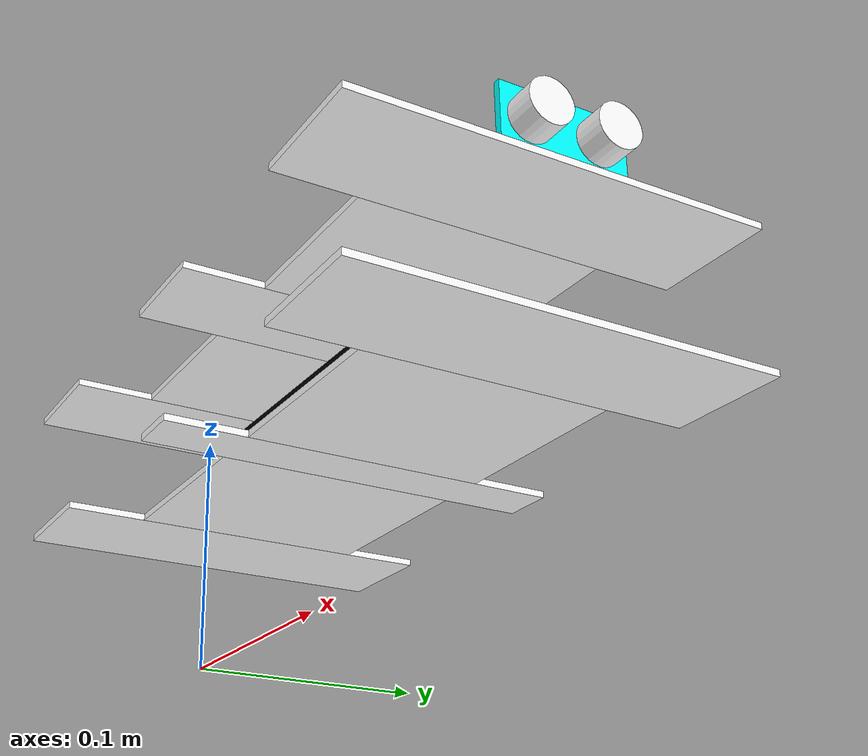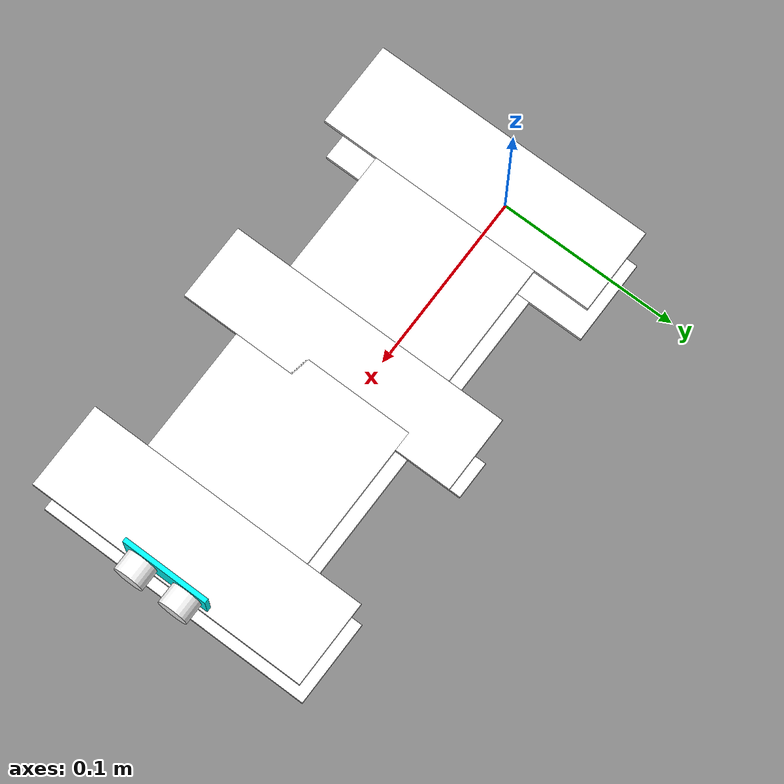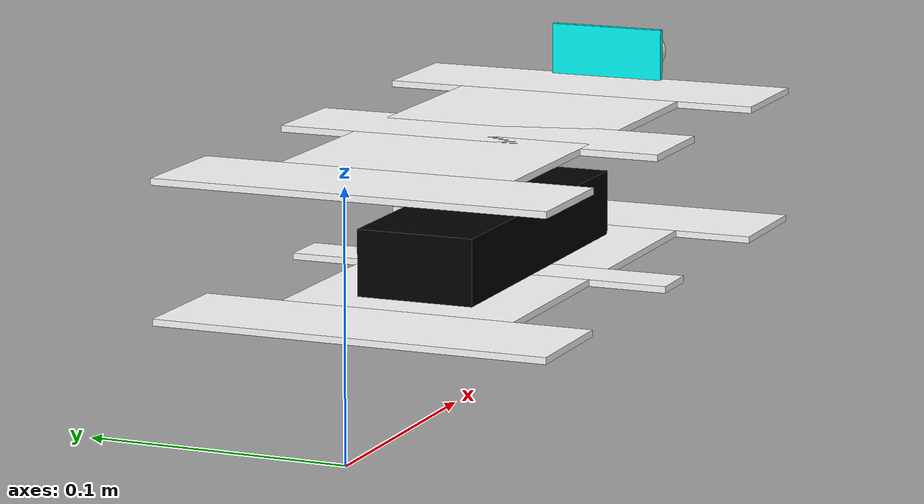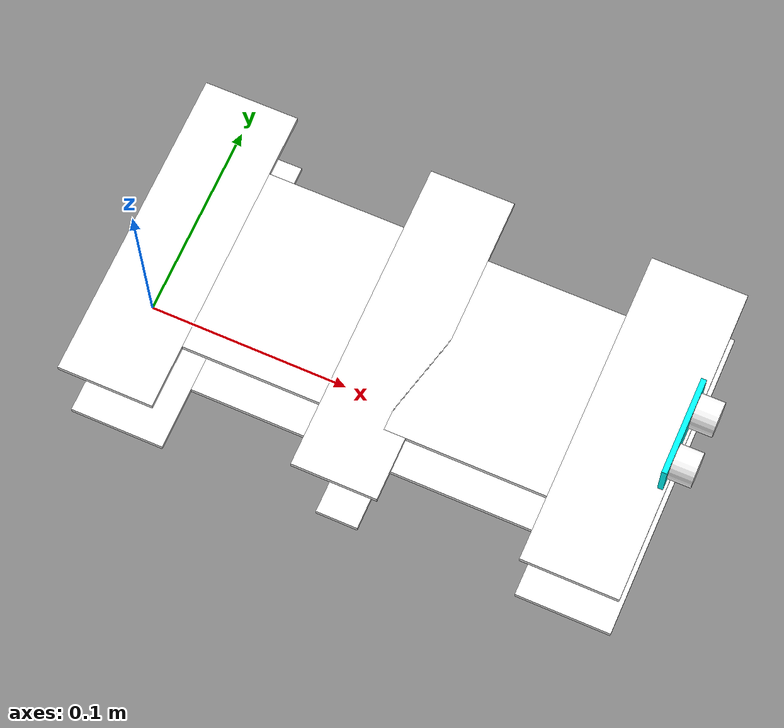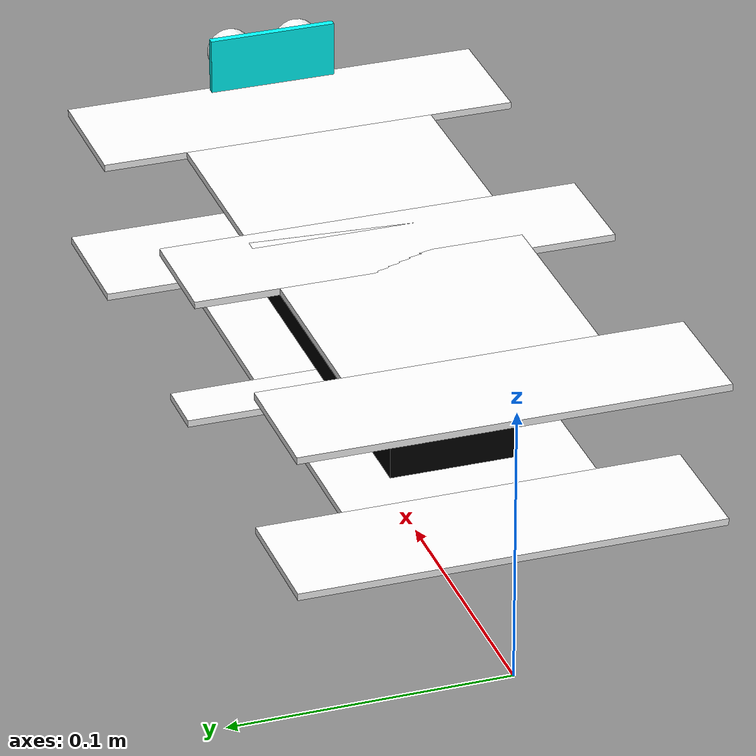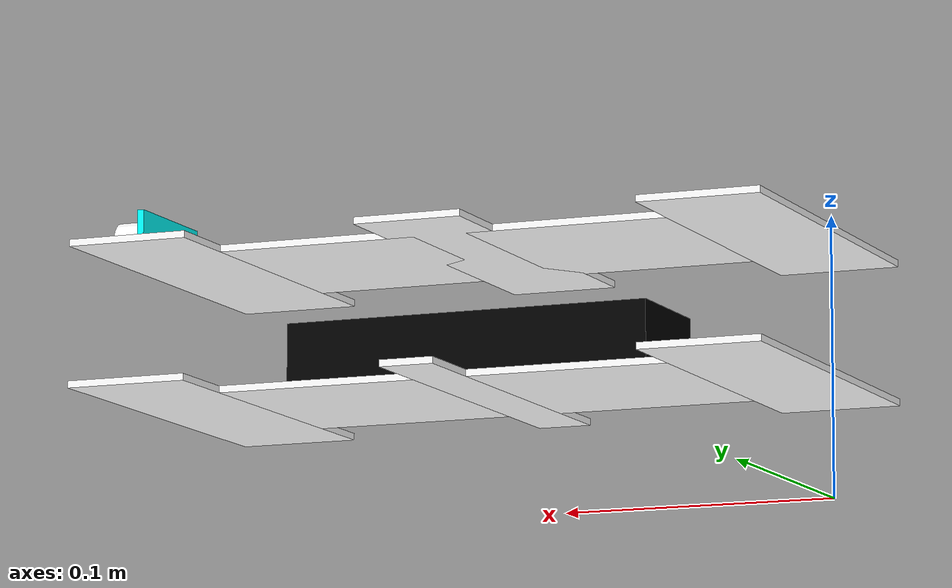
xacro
<?xml version="1.0"?>
<robot xmlns:xacro="http://www.ros.org/wiki/xacro"  >
    <xacro:include filename="inertial_macros.xacro"/>
    <material name="white">
        <color rgba="1.0 1.0 1.0 1.0"/>
    </material>

    <material name="black">
        <color rgba="0.0 0.0 0.0 1.0"/>
    </material>

    <material name="red">
        <color rgba="1.0 0.0 0.0 1.0"/>
    </material>
    <material name="yellow">
        <color rgba="1.0 1.0 0.0 1.0"/>
    </material>

    <material name="blue">
        <color rgba="0.0 1.0 1.0 1.0"/>
    </material>

    <material name="green">
        <color rgba="0.0 1.0 0.0 1.0"/>
    </material>
<link name="base_link">

</link>

<!-- Chassis part 1 -->
<joint name="chassis1_joint" type="fixed">
    <parent link="base_link"/>
    <child link="chassis1"/>
    <origin xyz="0.0 0.0 0.0"/>
</joint>
<link name="chassis1">
    <visual>
        <origin xyz="0.0225 0.0 0.045"/>
        <geometry>
            <box size="0.045 0.15 0.0025"/>
        </geometry>
        <material name="white"/>
    </visual>
    <collision>
        <origin xyz="0.0225 0 0.045"/>
        <geometry>
            <box size="0.045 0.15 0.0025"/>
        </geometry>
    </collision>
    <xacro:inertial_box mass="0.0084375" x="0.045" y="0.15" z="0.0025">
        <origin xyz="0.0225 0.0 0.045" rpy="0.0 0.0 0.0"/>
    </xacro:inertial_box>
</link>
<gazebo reference="chassis1">
    <material>Gazebo/White</material>
</gazebo>

<!-- Chassis part 2 -->
<joint name="chassis2_joint" type="fixed">
    <parent link="chassis1"/>
    <child link="chassis2"/>
    <origin xyz="0.0825 0.0 0.045"/>
</joint>
<link name="chassis2">
    <visual>
        <geometry>
            <box size="0.075 0.09 0.0025"/>
        </geometry>
        <material name="white"/>
    </visual>
    <collision>
        <geometry>
            <box size="0.075 0.09 0.0025"/>
        </geometry>
    </collision>
    <xacro:inertial_box mass="0.0084375" x="0.075" y="0.09" z="0.0025">
        <origin xyz="0.0825 0.0 0.045" rpy="0.0 0.0 0.0"/>
    </xacro:inertial_box>
</link>
<gazebo reference="chassis2">
    <material>Gazebo/White</material>
</gazebo>

<!-- Chassis part 3 -->
<joint name="chassis3_joint" type="fixed">
    <parent link="chassis2"/>
    <child link="chassis3"/>
    <origin xyz="0.0475 0.0 0.0"/>
</joint>
<link name="chassis3">
    <visual>
        <geometry>
            <box size="0.02 0.15 0.0025"/>
        </geometry>
        <material name="white"/>
    </visual>
    <collision>
        <geometry>
            <box size="0.02 0.15 0.0025"/>
        </geometry>
    </collision>
    <xacro:inertial_box mass="0.00375" x="0.02" y="0.15" z="0.0025">
        <origin xyz="0.0475 0.0 0.0" rpy="0.0 0.0 0.0"/>
    </xacro:inertial_box>
</link>
<gazebo reference="chassis3">
    <material>Gazebo/White</material>
</gazebo>

<!-- Chassis part 4 -->
<joint name="chassis4_joint" type="fixed">
    <parent link="chassis3"/>
    <child link="chassis4"/>
    <origin xyz="0.0475 0.0 0.0"/>
</joint>
<link name="chassis4">
    <visual>
        <geometry>
            <box size="0.075 0.09 0.0025"/>
        </geometry>
        <material name="white"/>
    </visual>
    <collision>
        <geometry>
            <box size="0.075 0.09 0.0025"/>
        </geometry>
    </collision>
    <xacro:inertial_box mass="0.0084375" x="0.075" y="0.09" z="0.0025">
        <origin xyz="0.0475 0.0 0.0" rpy="0.0 0.0 0.0"/>
    </xacro:inertial_box>
</link>
<gazebo reference="chassis4">
    <material>Gazebo/White</material>
</gazebo>

<!-- Chassis part 5 -->
<joint name="chassis5_joint" type="fixed">
    <parent link="chassis4"/>
    <child link="chassis5"/>
    <origin xyz="0.06 0.0 0.0"/>
</joint>
<link name="chassis5">
    <visual>
        <geometry>
            <box size="0.045 0.15 0.0025"/>
        </geometry>
        <material name="white"/>
    </visual>
    <collision>
        <geometry>
            <box size="0.045 0.15 0.0025"/>
        </geometry>
    </collision>
    <xacro:inertial_box mass="0.00375" x="0.045" y="0.15" z="0.0025">
        <origin xyz="0.06 0.0 0.0" rpy="0.0 0.0 0.0"/>
    </xacro:inertial_box>
</link>
<gazebo reference="chassis5">
    <material>Gazebo/White</material>
</gazebo>

<!-- Chassis part 1 -->
<joint name="chassis11_joint" type="fixed">
    <parent link="base_link"/>
    <child link="chassis11"/>
    <origin xyz="0.0 0.0 0.0"/>
</joint>
<link name="chassis11">
    <visual>
        <origin xyz="0.0225 0.0 0.096"/>
        <geometry>
            <box size="0.045 0.15 0.0025"/>
        </geometry>
        <material name="white"/>
    </visual>
    <collision>
        <origin xyz="0.0225 0 0.096"/>
        <geometry>
            <box size="0.045 0.15 0.0025"/>
        </geometry>
    </collision>
    <xacro:inertial_box mass="0.0084375" x="0.045" y="0.15" z="0.0025">
        <origin xyz="0.0225 0.0 0.096" rpy="0.0 0.0 0.0"/>
    </xacro:inertial_box>
</link>
<gazebo reference="chassis11">
    <material>Gazebo/White</material>
</gazebo>

<!-- Chassis part 2 -->
<joint name="chassis21_joint" type="fixed">
    <parent link="chassis1"/>
    <child link="chassis21"/>
    <origin xyz="0.0825 0.0 0.096"/>
</joint>
<link name="chassis21">
    <visual>
        <geometry>
            <box size="0.075 0.09 0.0025"/>
        </geometry>
        <material name="white"/>
    </visual>
    <collision>
        <geometry>
            <box size="0.075 0.09 0.0025"/>
        </geometry>
    </collision>
    <xacro:inertial_box mass="0.0084375" x="0.075" y="0.09" z="0.0025">
        <origin xyz="0.0825 0.0 0.096" rpy="0.0 0.0 0.0"/>
    </xacro:inertial_box>
</link>
<gazebo reference="chassis21">
    <material>Gazebo/White</material>
</gazebo>

<!-- Chassis part 3 -->
<joint name="chassis31_joint" type="fixed">
    <parent link="chassis2"/>
    <child link="chassis31"/>
    <origin xyz="0.0475 0.0 0.051"/>
</joint>
<link name="chassis31">
    <visual>
        <geometry>
            <box size="0.04 0.15 0.0025"/>
        </geometry>
        <material name="white"/>
    </visual>
    <collision>
        <geometry>
            <box size="0.04 0.15 0.0025"/>
        </geometry>
    </collision>
    <xacro:inertial_box mass="0.00750" x="0.04" y="0.15" z="0.0025">
        <origin xyz="0.0475 0.0 0.051" rpy="0.0 0.0 0.0"/>
    </xacro:inertial_box>
</link>
<gazebo reference="chassis31">
    <material>Gazebo/White</material>
</gazebo>

<!-- Chassis part 4 -->
<joint name="chassis41_joint" type="fixed">
    <parent link="chassis3"/>
    <child link="chassis41"/>
    <origin xyz="0.0475 0.0 0.051"/>
</joint>
<link name="chassis41">
    <visual>
        <geometry>
            <box size="0.075 0.09 0.0025"/>
        </geometry>
        <material name="white"/>
    </visual>
    <collision>
        <geometry>
            <box size="0.075 0.09 0.0025"/>
        </geometry>
    </collision>
    <xacro:inertial_box mass="0.0084375" x="0.075" y="0.09" z="0.0025">
        <origin xyz="0.0475 0.0 0.051" rpy="0.0 0.0 0.0"/>
    </xacro:inertial_box>
</link>
<gazebo reference="chassis41">
    <material>Gazebo/White</material>
</gazebo>

<!-- Chassis part 5 -->
<joint name="chassis51_joint" type="fixed">
    <parent link="chassis4"/>
    <child link="chassis51"/>
    <origin xyz="0.06 0.0 0.051"/>
</joint>
<link name="chassis51">
    <visual>
        <geometry>
            <box size="0.045 0.15 0.0025"/>
        </geometry>
        <material name="white"/>
    </visual>
    <collision>
        <geometry>
            <box size="0.045 0.15 0.0025"/>
        </geometry>
    </collision>
    <xacro:inertial_box mass="0.00375" x="0.045" y="0.15" z="0.0025">
        <origin xyz="0.06 0.0 0.051" rpy="0.0 0.0 0.0"/>
    </xacro:inertial_box>
</link>
<gazebo reference="chassis51">
    <material>Gazebo/White</material>
</gazebo>

<!-- Ultrasonic sensor -->
<joint name="supprot_ultrasoni_joint" type="fixed">
    <parent link="chassis51"/>
    <child link="supprot_ultr"/>
    <origin xyz="0.02 0.0 0.01065"/>
</joint>
<link name="supprot_ultr">
    <visual>
        <geometry>
            <box size="0.0025 0.0457 0.0213"/>
        </geometry>
        <material name="blue"/>
    </visual>
    <collision>
        <geometry>
            <box size="0.0025 0.0457 0.0213"/>
        </geometry>
    </collision>
    <xacro:inertial_box mass="0.00375" x="0.0025" y="0.0457" z="0.0213">
        <origin xyz="0.02 0.0 0.01065" rpy="0.0 0.0 0.0"/>
    </xacro:inertial_box>
</link>
<gazebo reference="supprot_ultr">
    <material>Gazebo/Blue</material>
</gazebo>

<!-- Ultrasonic Trigger -->
<joint name="supprot_trigger_joint" type="fixed">
    <parent link="supprot_ultr"/>
    <child link="supprot_trigger"/>
    <origin xyz="0.006 0.01235 0.0" rpy="0.0 ${pi/2} 0.0"/>
</joint>
<link name="supprot_trigger">
    <visual>
        <geometry>
            <cylinder length="0.012" radius="0.008" />
        </geometry>
        <material name="white"/>
    </visual>
    <collision>
        <geometry>
            <cylinder length="0.012" radius="0.008" />
        </geometry>
    </collision>
    <xacro:inertial_cylinder mass="0.0012063715789784805" length="0.012" radius="0.008">
        <origin xyz="0.006 0.01235 0.0" rpy="0.0 ${pi/2} 0.0"/>
    </xacro:inertial_cylinder>
</link>
<gazebo reference="supprot_trigger">
    <material>Gazebo/White</material>
</gazebo>

<!-- Ultrasonic Echo -->
<joint name="supprot_echo_joint" type="fixed">
    <parent link="supprot_ultr"/>
    <child link="supprot_echo"/>
    <origin xyz="0.006 -0.01235 0.0" rpy="0.0 ${pi/2} 0.0"/>
</joint>
<link name="supprot_echo">
    <visual>
        <geometry>
            <cylinder length="0.012" radius="0.008" />
        </geometry>
        <material name="white"/>
    </visual>
    <collision>
        <geometry>
            <cylinder length="0.012" radius="0.008" />
        </geometry>
    </collision>
    <xacro:inertial_cylinder mass="0.0012063715789784805" length="0.012" radius="0.008">
        <origin xyz="0.006 -0.01235 0.0" rpy="0.0 ${pi/2} 0.0"/>
    </xacro:inertial_cylinder>
</link>
<gazebo reference="supprot_echo">
    <material>Gazebo/White</material>
</gazebo>

<!-- *********************** ULTRASONIC SENSOR ************************  -->
     <joint name="ultrasonic_optical_joint" type="fixed">
        <parent link="supprot_ultr"/>
        <child link="ultrasonic_link_optical"/>
        <origin xyz="0 0 0" rpy="${-pi/2} 0 ${-pi/2}"/>
    </joint>

    <link name="ultrasonic_link_optical"></link>

    <gazebo reference="supprot_ultr">

        <sensor name="ultrasonic_1" type="ray">
            <pose> 0 0 0 0 0 0 </pose>
            <always_on>true</always_on>
            <visualize>true</visualize>
            <update_rate>5</update_rate>
            <ray>
            <scan>
                <horizontal>
                <samples>5</samples>
                <resolution>1.000000</resolution>
                <min_angle>-0.12</min_angle>
                <max_angle>0.12</max_angle>
                </horizontal>
                <vertical>
                <samples>5</samples>
                <resolution>1.000000</resolution>
                <min_angle>-0.01</min_angle>
                <max_angle>0.01</max_angle>
                </vertical>
            </scan>
            <range>
                <min>0.02</min>
                <max>4</max>
                <resolution>0.01</resolution>
            </range>
            <noise>
                <type>gaussian</type>
                <mean>0.0</mean>
                <stddev>0.01</stddev>
            </noise>
            </ray>
            <plugin name="ultrasonic_sensor_1" filename="libgazebo_ros_ray_sensor.so">
            <ros>
                <remapping>~/out:=ultrasonic_sensor_1</remapping>
            </ros>
            <output_type>sensor_msgs/Range</output_type>
            <radiation_type>ultrasound</radiation_type>
            <frame_name>ultrasonic_link_optical</frame_name>
            </plugin>
        </sensor>
    </gazebo>

<!-- *********************** ULTRASONIC SENSOR ************************  -->

<!-- Batterie -->
<joint name="batterie_joint" type="fixed">
    <parent link="chassis3"/>
    <child link="batterie"/>
    <origin xyz="0.0 0.0 0.01375"/>
</joint>
<link name="batterie">
    <visual>
        <geometry>
            <box size="0.1375 0.045 0.025"/>
        </geometry>
        <material name="black"/>
    </visual>
    <collision>
        <geometry>
            <box size="0.1375 0.045 0.025"/>
        </geometry>
    </collision>
    <xacro:inertial_box mass="0.5" x="0.1375" y="0.045" z="0.025">
        <origin xyz="0.0 0.0 0.01375" rpy="0.0 0.0 0.0"/>
    </xacro:inertial_box>
</link>
<gazebo reference="batterie">
    <material>Gazebo/Black</material>
</gazebo>

</robot>

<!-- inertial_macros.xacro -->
<robot xmlns:xacro="http://www.ros.org/wiki/xacro" >

    <!-- Specify some standard inertial calculations https://en.wikipedia.org/wiki/List_of_moments_of_inertia -->
    <!-- These make use of xacro's mathematical functionality -->

    <xacro:macro name="inertial_sphere" params="mass radius *origin">
        <inertial>
            <xacro:insert_block name="origin"/>
            <mass value="${mass}" />
            <inertia ixx="${(2/5) * mass * (radius*radius)}" ixy="0.0" ixz="0.0"
                    iyy="${(2/5) * mass * (radius*radius)}" iyz="0.0"
                    izz="${(2/5) * mass * (radius*radius)}" />
        </inertial>
    </xacro:macro>

    <xacro:macro name="inertial_box" params="mass x y z *origin">
        <inertial>
            <xacro:insert_block name="origin"/>
            <mass value="${mass}" />
            <inertia ixx="${(1/12) * mass * (y*y+z*z)}" ixy="0.0" ixz="0.0"
                    iyy="${(1/12) * mass * (x*x+z*z)}" iyz="0.0"
                    izz="${(1/12) * mass * (x*x+y*y)}" />
        </inertial>
    </xacro:macro>

    <!-- length="0.025" radius="0.0335" m = 100g = 0.1Kg
    ixx=0.000033264583
    iyy=0.000033264583
    izz=0.00002805625-->

    <xacro:macro name="inertial_cylinder" params="mass length radius *origin">
        <inertial>
            <xacro:insert_block name="origin"/>
            <mass value="${mass}" />
            <inertia ixx="${(1/12) * mass * (3*radius*radius + length*length)}" ixy="0.0" ixz="0.0"
                    iyy="${(1/12) * mass * (3*radius*radius + length*length)}" iyz="0.0"
                    izz="${(1/2) * mass * (radius*radius)}" />
        </inertial>
    </xacro:macro>

</robot>
